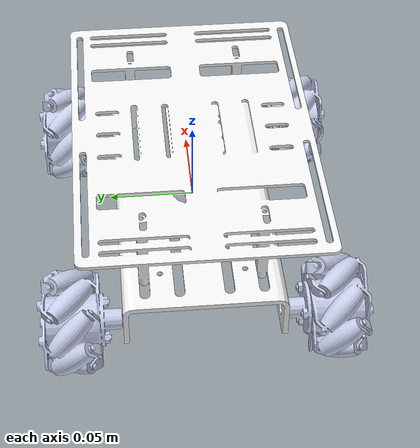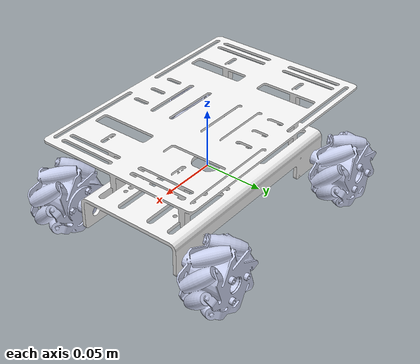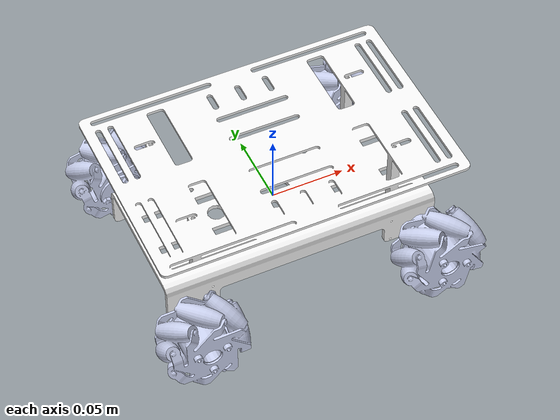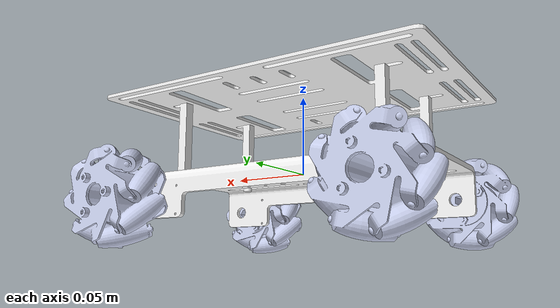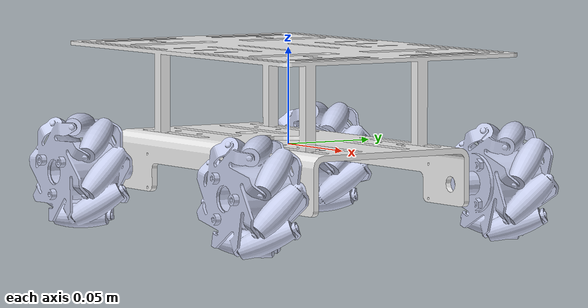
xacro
<?xml version="1.0" encoding="utf-8"?>
<robot xmlns:xacro="http://ros.org/wiki/xacro" name="BASE_ROBOT">
  <xacro:include filename="$(find robot_description)/urdf/BASE_ROBOT_ESSENTIALS.xacro" />
  <xacro:include filename="$(find robot_description)/urdf/gazebo_essentials_base.xacro" />
  <link name="dummy">
  </link>
  <joint name="dummy_joint" type="fixed">
    <parent link="dummy" />
    <child link="base_link" />
  </joint>
  <link name="base_link">

    <inertial>
      <origin
        xyz="1.2182E-05 2.334E-05 0.0089063"
        rpy="0 0 0" />
      <mass
        value=".16211" />
      <inertia
        ixx="0.0001472"
        ixy="8.7863E-09"
        ixz="-1.4391E-08"
        iyy="0.00036976"
        iyz="4.2045E-10"
        izz="0.00050482" />
    </inertial>
    <visual>
      <origin
        xyz="0 0 0"
        rpy="0 0 0" />
      <geometry>
        <mesh
          filename="package://robot_description/meshes/base_link.STL" />
      </geometry>
      <material
        name="">
        <color
          rgba="0.95686 0.95686 0.95686 1" />
      </material>
    </visual>
    <collision>
      <origin
        xyz="0 0 0"
        rpy="0 0 0" />
      <geometry>
        <mesh
          filename="package://robot_description/meshes/base_link.STL" />
      </geometry>
    </collision>
  </link>
  <link name="LBW_LINK">
    <inertial>
      <origin
        xyz="5.206E-09 -4.8272E-10 -0.00089187"
        rpy="0 0 0" />
      <mass
        value="0.049376" />
      <inertia
        ixx="1.3526E-05"
        ixy="-6.5857E-20"
        ixz="-5.8823E-13"
        iyy="1.3526E-05"
        iyz="-4.9998E-12"
        izz="1.8891E-05" />
    </inertial>
    <visual>
      <origin
        xyz="0 0 0"
        rpy="0 0 0" />
      <geometry>
        <mesh
          filename="package://robot_description/meshes/LBW_LINK.STL" />
      </geometry>
      <material
        name="">
        <color
          rgba="0.79216 0.81961 0.93333 1" />
      </material>
    </visual>
    <collision>
      <origin
        xyz="0 0 0"
        rpy="0 0 0" />
      <geometry>
        <mesh
          filename="package://robot_description/meshes/LBW_LINK.STL" />
      </geometry>
    </collision>
  </link>
  <joint name="LBW_JOINT" type="continuous">
    <origin
      xyz="-0.08315 0.075096 -0.016326"
      rpy="-1.5708 -0.22308 0" />
    <parent
      link="base_link" />
    <child
      link="LBW_LINK" />
    <axis
      xyz="0 0 1" />
    <limit
      effort="100"
      velocity="23.03" />
    <dynamics
      damping="0.1"
      friction="0.1" />
  </joint>
  <link name="LFW_LINK">
    <inertial>
      <origin
        xyz="5.206E-09 -4.8272E-10 -0.00089187"
        rpy="0 0 0" />
      <mass
        value="0.049376" />
      <inertia
        ixx="1.3526E-05"
        ixy="-7.0304E-20"
        ixz="-5.8823E-13"
        iyy="1.3526E-05"
        iyz="-4.9998E-12"
        izz="1.8891E-05" />
    </inertial>
    <visual>
      <origin
        xyz="0 0 0"
        rpy="0 0 0" />
      <geometry>
        <mesh
          filename="package://robot_description/meshes/LFW_LINK.STL" />
      </geometry>
      <material
        name="">
        <color
          rgba="0.79216 0.81961 0.93333 1" />
      </material>
    </visual>
    <collision>
      <origin
        xyz="0 0 0"
        rpy="0 0 0" />
      <geometry>
        <mesh
          filename="package://robot_description/meshes/LFW_LINK.STL" />
      </geometry>
    </collision>
  </link>
  <joint name="LFW_JOINT"
    type="continuous">
    <origin
      xyz="0.08315 0.075096 -0.016326"
      rpy="1.5708 -1.0971 3.1416" />
    <parent
      link="base_link" />
    <child
      link="LFW_LINK" />
    <axis
      xyz="0 0 1" />
    <limit
      effort="100"
      velocity="23.03" />
    <dynamics
      damping="0.1"
      friction="0.1" />
  </joint>
  <link name="RBW_LINK">
    <inertial>
      <origin
        xyz="5.206E-09 4.8272E-10 0.00089187"
        rpy="0 0 0" />
      <mass
        value="0.049376" />
      <inertia
        ixx="1.3526E-05"
        ixy="8.4756E-20"
        ixz="5.8823E-13"
        iyy="1.3526E-05"
        iyz="-4.9998E-12"
        izz="1.8891E-05" />
    </inertial>
    <visual>
      <origin
        xyz="0 0 0"
        rpy="0 0 0" />
      <geometry>
        <mesh
          filename="package://robot_description/meshes/RBW_LINK.STL" />
      </geometry>
      <material
        name="">
        <color
          rgba="0.79216 0.81961 0.93333 1" />
      </material>
    </visual>
    <collision>
      <origin
        xyz="0 0 0"
        rpy="0 0 0" />
      <geometry>
        <mesh
          filename="package://robot_description/meshes/RBW_LINK.STL" />
      </geometry>
    </collision>
  </link>
  <joint name="RBW_JOINT"
    type="continuous">
    <origin
      xyz="-0.08315 -0.075096 -0.016326"
      rpy="1.5708 -1.5483 3.1416" />
    <parent
      link="base_link" />
    <child
      link="RBW_LINK" />
    <axis
      xyz="0 0 1" />
    <limit
      effort="100"
      velocity="23.03" />
    <dynamics
      damping="0.1"
      friction="0.1" />
  </joint>
  <link name="RFW_LINK">
    <inertial>
      <origin
        xyz="-5.206E-09 -4.8272E-10 0.00089187"
        rpy="0 0 0" />
      <mass
        value="0.049376" />
      <inertia
        ixx="1.3526E-05"
        ixy="5.4634E-20"
        ixz="-5.8823E-13"
        iyy="1.3526E-05"
        iyz="4.9998E-12"
        izz="1.8891E-05" />
    </inertial>
    <visual>
      <origin
        xyz="0 0 0"
        rpy="0 0 0" />
      <geometry>
        <mesh
          filename="package://robot_description/meshes/RFW_LINK.STL" />
      </geometry>
      <material
        name="">
        <color
          rgba="0.79216 0.81961 0.93333 1" />
      </material>
    </visual>
    <collision>
      <origin
        xyz="0 0 0"
        rpy="0 0 0" />
      <geometry>
        <mesh
          filename="package://robot_description/meshes/RFW_LINK.STL" />
      </geometry>
    </collision>
  </link>
  <joint name="RFW_JOINT"
    type="continuous">
    <origin
      xyz="0.08315 -0.075096 -0.016326"
      rpy="1.5708 -0.99328 -3.1416" />
    <parent
      link="base_link" />
    <child
      link="RFW_LINK" />
    <axis
      xyz="0 0 1" />
    <limit
      effort="100"
      velocity="23.03" />
    <dynamics
      damping="0.1"
      friction="0.1" />
  </joint>
  <xacro:base_transmission prefix="LBW" />
  <xacro:base_transmission prefix="LFW" />
  <xacro:base_transmission prefix="RBW" />
  <xacro:base_transmission prefix="RFW" />

  <xacro:wheel_friction prefix="LBW" />
  <xacro:wheel_friction prefix="LFW" />
  <xacro:wheel_friction prefix="RBW" />
  <xacro:wheel_friction prefix="RFW" />

</robot>
